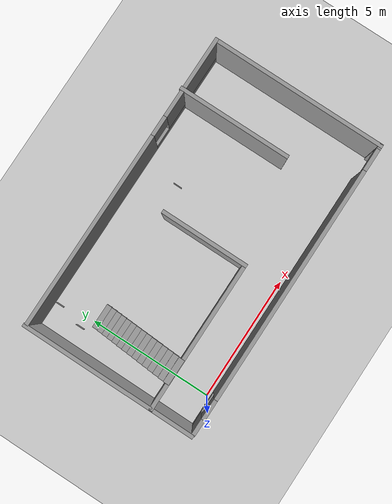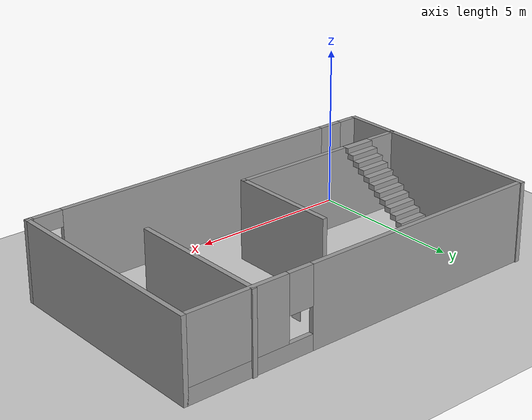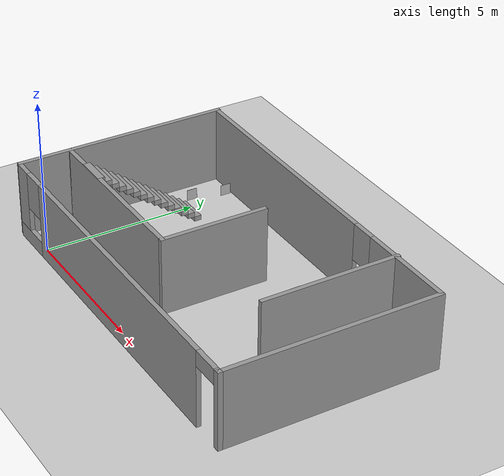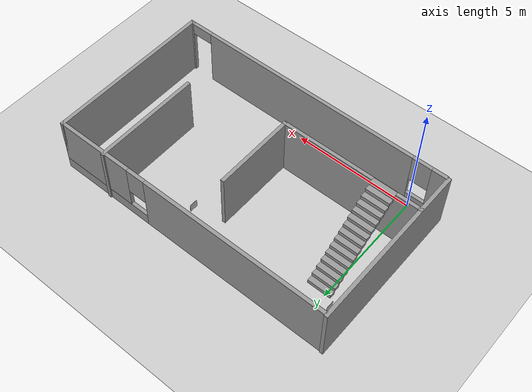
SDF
<sdf version="1.7">
 <world name="default">
  <light name="sun" type="directional">
   <pose>0 0 10 0 -0 0</pose>
   <diffuse>0.8 0.8 0.8 1</diffuse>
   <specular>0.2 0.2 0.2 1</specular>
   <attenuation>
    <range>1000</range>
    <constant>0.9</constant>
    <linear>0.01</linear>
    <quadratic>0.001</quadratic>
   </attenuation>
   <direction>-0.5 0.1 -0.9</direction>
   <spot><inner_angle>0</inner_angle><outer_angle>0</outer_angle><falloff>0</falloff></spot>
  </light>
  <model name="ground_plane">
   <static>1</static>
   <link name="link">
    <collision name="collision">
     <geometry><plane><normal>0 0 1</normal><size>100 100</size></plane></geometry>
     <surface><friction><ode><mu>100</mu><mu2>50</mu2></ode></friction></surface>
    </collision>
    <visual name="visual">
     <cast_shadows>0</cast_shadows>
     <geometry><plane><normal>0 0 1</normal><size>100 100</size></plane></geometry>
     <material>
      <script><uri>file://media/materials/scripts/gazebo.material</uri><name>Gazebo/Grey</name></script>
     </material>
    </visual>
   </link>
  </model>
  <gravity>0 0 -9.8</gravity>
  <magnetic_field>6e-06 2.3e-05 -4.2e-05</magnetic_field>
  <atmosphere type="adiabatic"/>
  <physics type="ode">
   <max_step_size>0.001</max_step_size>
   <real_time_factor>1</real_time_factor>
   <real_time_update_rate>1000</real_time_update_rate>
  </physics>
  <scene><ambient>0.4 0.4 0.4 1</ambient><background>0.7 0.7 0.7 1</background><shadows>1</shadows></scene>
  <audio><device>default</device></audio>
  <spherical_coordinates>
   <surface_model>EARTH_WGS84</surface_model>
   <latitude_deg>0</latitude_deg>
   <longitude_deg>0</longitude_deg>
   <elevation>0</elevation>
   <heading_deg>0</heading_deg>
  </spherical_coordinates>
  <model name="warehouse.world">
   <pose>4.76867 3.64281 0 0 -0 0</pose>
   <link name="Stairs_0">
    <visual name="Stairs_0_Visual_0">
     <pose>-4.47396 1.16918 0.083333 0 -0 0</pose>
     <geometry><box><size>1 0.233333 0.166667</size></box></geometry>
     <material>
      <script><uri>file://media/materials/scripts/gazebo.material</uri><name>Gazebo/Grey</name></script>
      <ambient>1 1 1 1</ambient>
     </material>
     <meta><layer>0</layer></meta>
    </visual>
    <collision name="Stairs_0_Collision_0">
     <geometry><box><size>1 0.233333 0.166667</size></box></geometry>
     <pose>-4.47396 1.16918 0.083333 0 -0 0</pose>
    </collision>
    <visual name="Stairs_0_Visual_1">
     <pose>-4.47396 0.935851 0.25 0 -0 0</pose>
     <geometry><box><size>1 0.233333 0.166667</size></box></geometry>
     <material>
      <script><uri>file://media/materials/scripts/gazebo.material</uri><name>Gazebo/Grey</name></script>
      <ambient>1 1 1 1</ambient>
     </material>
     <meta><layer>0</layer></meta>
    </visual>
    <collision name="Stairs_0_Collision_1">
     <geometry><box><size>1 0.233333 0.166667</size></box></geometry>
     <pose>-4.47396 0.935851 0.25 0 -0 0</pose>
    </collision>
    <visual name="Stairs_0_Visual_2">
     <pose>-4.47396 0.702518 0.416667 0 -0 0</pose>
     <geometry><box><size>1 0.233333 0.166667</size></box></geometry>
     <material>
      <script><uri>file://media/materials/scripts/gazebo.material</uri><name>Gazebo/Grey</name></script>
      <ambient>1 1 1 1</ambient>
     </material>
     <meta><layer>0</layer></meta>
    </visual>
    <collision name="Stairs_0_Collision_2">
     <geometry><box><size>1 0.233333 0.166667</size></box></geometry>
     <pose>-4.47396 0.702518 0.416667 0 -0 0</pose>
    </collision>
    <visual name="Stairs_0_Visual_3">
     <pose>-4.47396 0.469185 0.583333 0 -0 0</pose>
     <geometry><box><size>1 0.233333 0.166667</size></box></geometry>
     <material>
      <script><uri>file://media/materials/scripts/gazebo.material</uri><name>Gazebo/Grey</name></script>
      <ambient>1 1 1 1</ambient>
     </material>
     <meta><layer>0</layer></meta>
    </visual>
    <collision name="Stairs_0_Collision_3">
     <geometry><box><size>1 0.233333 0.166667</size></box></geometry>
     <pose>-4.47396 0.469185 0.583333 0 -0 0</pose>
    </collision>
    <visual name="Stairs_0_Visual_4">
     <pose>-4.47396 0.235851 0.75 0 -0 0</pose>
     <geometry><box><size>1 0.233333 0.166667</size></box></geometry>
     <material>
      <script><uri>file://media/materials/scripts/gazebo.material</uri><name>Gazebo/Grey</name></script>
      <ambient>1 1 1 1</ambient>
     </material>
     <meta><layer>0</layer></meta>
    </visual>
    <collision name="Stairs_0_Collision_4">
     <geometry><box><size>1 0.233333 0.166667</size></box></geometry>
     <pose>-4.47396 0.235851 0.75 0 -0 0</pose>
    </collision>
    <visual name="Stairs_0_Visual_5">
     <pose>-4.47396 0.002518 0.916667 0 -0 0</pose>
     <geometry><box><size>1 0.233333 0.166667</size></box></geometry>
     <material>
      <script><uri>file://media/materials/scripts/gazebo.material</uri><name>Gazebo/Grey</name></script>
      <ambient>1 1 1 1</ambient>
     </material>
     <meta><layer>0</layer></meta>
    </visual>
    <collision name="Stairs_0_Collision_5">
     <geometry><box><size>1 0.233333 0.166667</size></box></geometry>
     <pose>-4.47396 0.002518 0.916667 0 -0 0</pose>
    </collision>
    <visual name="Stairs_0_Visual_6">
     <pose>-4.47396 -0.230815 1.08333 0 -0 0</pose>
     <geometry><box><size>1 0.233333 0.166667</size></box></geometry>
     <material>
      <script><uri>file://media/materials/scripts/gazebo.material</uri><name>Gazebo/Grey</name></script>
      <ambient>1 1 1 1</ambient>
     </material>
     <meta><layer>0</layer></meta>
    </visual>
    <collision name="Stairs_0_Collision_6">
     <geometry><box><size>1 0.233333 0.166667</size></box></geometry>
     <pose>-4.47396 -0.230815 1.08333 0 -0 0</pose>
    </collision>
    <visual name="Stairs_0_Visual_7">
     <pose>-4.47396 -0.464149 1.25 0 -0 0</pose>
     <geometry><box><size>1 0.233333 0.166667</size></box></geometry>
     <material>
      <script><uri>file://media/materials/scripts/gazebo.material</uri><name>Gazebo/Grey</name></script>
      <ambient>1 1 1 1</ambient>
     </material>
     <meta><layer>0</layer></meta>
    </visual>
    <collision name="Stairs_0_Collision_7">
     <geometry><box><size>1 0.233333 0.166667</size></box></geometry>
     <pose>-4.47396 -0.464149 1.25 0 -0 0</pose>
    </collision>
    <visual name="Stairs_0_Visual_8">
     <pose>-4.47396 -0.697482 1.41667 0 -0 0</pose>
     <geometry><box><size>1 0.233333 0.166667</size></box></geometry>
     <material>
      <script><uri>file://media/materials/scripts/gazebo.material</uri><name>Gazebo/Grey</name></script>
      <ambient>1 1 1 1</ambient>
     </material>
     <meta><layer>0</layer></meta>
    </visual>
    <collision name="Stairs_0_Collision_8">
     <geometry><box><size>1 0.233333 0.166667</size></box></geometry>
     <pose>-4.47396 -0.697482 1.41667 0 -0 0</pose>
    </collision>
    <visual name="Stairs_0_Visual_9">
     <pose>-4.47396 -0.930815 1.58333 0 -0 0</pose>
     <geometry><box><size>1 0.233333 0.166667</size></box></geometry>
     <material>
      <script><uri>file://media/materials/scripts/gazebo.material</uri><name>Gazebo/Grey</name></script>
      <ambient>1 1 1 1</ambient>
     </material>
     <meta><layer>0</layer></meta>
    </visual>
    <collision name="Stairs_0_Collision_9">
     <geometry><box><size>1 0.233333 0.166667</size></box></geometry>
     <pose>-4.47396 -0.930815 1.58333 0 -0 0</pose>
    </collision>
    <visual name="Stairs_0_Visual_10">
     <pose>-4.47396 -1.16415 1.75 0 -0 0</pose>
     <geometry><box><size>1 0.233333 0.166667</size></box></geometry>
     <material>
      <script><uri>file://media/materials/scripts/gazebo.material</uri><name>Gazebo/Grey</name></script>
      <ambient>1 1 1 1</ambient>
     </material>
     <meta><layer>0</layer></meta>
    </visual>
    <collision name="Stairs_0_Collision_10">
     <geometry><box><size>1 0.233333 0.166667</size></box></geometry>
     <pose>-4.47396 -1.16415 1.75 0 -0 0</pose>
    </collision>
    <visual name="Stairs_0_Visual_11">
     <pose>-4.47396 -1.39748 1.91667 0 -0 0</pose>
     <geometry><box><size>1 0.233333 0.166667</size></box></geometry>
     <material>
      <script><uri>file://media/materials/scripts/gazebo.material</uri><name>Gazebo/Grey</name></script>
      <ambient>1 1 1 1</ambient>
     </material>
     <meta><layer>0</layer></meta>
    </visual>
    <collision name="Stairs_0_Collision_11">
     <geometry><box><size>1 0.233333 0.166667</size></box></geometry>
     <pose>-4.47396 -1.39748 1.91667 0 -0 0</pose>
    </collision>
    <visual name="Stairs_0_Visual_12">
     <pose>-4.47396 -1.63082 2.08333 0 -0 0</pose>
     <geometry><box><size>1 0.233333 0.166667</size></box></geometry>
     <material>
      <script><uri>file://media/materials/scripts/gazebo.material</uri><name>Gazebo/Grey</name></script>
      <ambient>1 1 1 1</ambient>
     </material>
     <meta><layer>0</layer></meta>
    </visual>
    <collision name="Stairs_0_Collision_12">
     <geometry><box><size>1 0.233333 0.166667</size></box></geometry>
     <pose>-4.47396 -1.63082 2.08333 0 -0 0</pose>
    </collision>
    <visual name="Stairs_0_Visual_13">
     <pose>-4.47396 -1.86415 2.25 0 -0 0</pose>
     <geometry><box><size>1 0.233333 0.166667</size></box></geometry>
     <material>
      <script><uri>file://media/materials/scripts/gazebo.material</uri><name>Gazebo/Grey</name></script>
      <ambient>1 1 1 1</ambient>
     </material>
     <meta><layer>0</layer></meta>
    </visual>
    <collision name="Stairs_0_Collision_13">
     <geometry><box><size>1 0.233333 0.166667</size></box></geometry>
     <pose>-4.47396 -1.86415 2.25 0 -0 0</pose>
    </collision>
    <visual name="Stairs_0_Visual_14">
     <pose>-4.47396 -2.09748 2.41667 0 -0 0</pose>
     <geometry><box><size>1 0.233333 0.166667</size></box></geometry>
     <material>
      <script><uri>file://media/materials/scripts/gazebo.material</uri><name>Gazebo/Grey</name></script>
      <ambient>1 1 1 1</ambient>
     </material>
     <meta><layer>0</layer></meta>
    </visual>
    <collision name="Stairs_0_Collision_14">
     <geometry><box><size>1 0.233333 0.166667</size></box></geometry>
     <pose>-4.47396 -2.09748 2.41667 0 -0 0</pose>
    </collision>
   </link>
   <link name="Wall_0">
    <pose>0.058361 3.0125 0 0 -0 0</pose>
    <visual name="Wall_0_Visual_0">
     <pose>-2.06547 0 1.25 0 -0 0</pose>
     <geometry><box><size>7.86906 0.15 2.5</size></box></geometry>
     <material>
      <script><uri>file://media/materials/scripts/gazebo.material</uri><name>Gazebo/Grey</name></script>
      <ambient>1 1 1 1</ambient>
     </material>
     <meta><layer>0</layer></meta>
    </visual>
    <collision name="Wall_0_Collision_0">
     <geometry><box><size>7.86906 0.15 2.5</size></box></geometry>
     <pose>-2.06547 0 1.25 0 -0 0</pose>
    </collision>
    <visual name="Wall_0_Visual_1">
     <pose>3.93453 0 0.25 0 -0 0</pose>
     <geometry><box><size>4.13094 0.15 0.5</size></box></geometry>
     <material>
      <script><uri>file://media/materials/scripts/gazebo.material</uri><name>Gazebo/Grey</name></script>
      <ambient>1 1 1 1</ambient>
     </material>
     <meta><layer>0</layer></meta>
    </visual>
    <collision name="Wall_0_Collision_1">
     <geometry><box><size>4.13094 0.15 0.5</size></box></geometry>
     <pose>3.93453 0 0.25 0 -0 0</pose>
    </collision>
    <visual name="Wall_0_Visual_2">
     <pose>4.33453 0 1.5 0 -0 0</pose>
     <geometry><box><size>3.33094 0.15 2</size></box></geometry>
     <material>
      <script><uri>file://media/materials/scripts/gazebo.material</uri><name>Gazebo/Grey</name></script>
      <ambient>1 1 1 1</ambient>
     </material>
     <meta><layer>0</layer></meta>
    </visual>
    <collision name="Wall_0_Collision_2">
     <geometry><box><size>3.33094 0.15 2</size></box></geometry>
     <pose>4.33453 0 1.5 0 -0 0</pose>
    </collision>
    <visual name="Wall_0_Visual_3">
     <pose>2.26905 0 1.9 0 -0 0</pose>
     <geometry><box><size>0.8 0.15 1.2</size></box></geometry>
     <material>
      <script><uri>file://media/materials/scripts/gazebo.material</uri><name>Gazebo/Grey</name></script>
      <ambient>1 1 1 1</ambient>
     </material>
     <meta><layer>0</layer></meta>
    </visual>
    <collision name="Wall_0_Collision_3">
     <geometry><box><size>0.8 0.15 1.2</size></box></geometry>
     <pose>2.26905 0 1.9 0 -0 0</pose>
    </collision>
   </link>
   <link name="Wall_1">
    <collision name="Wall_1_Collision">
     <geometry><box><size>7 0.15 2.5</size></box></geometry>
     <pose>0 0 1.25 0 -0 0</pose>
    </collision>
    <visual name="Wall_1_Visual">
     <pose>0 0 1.25 0 -0 0</pose>
     <geometry><box><size>7 0.15 2.5</size></box></geometry>
     <material>
      <script><uri>file://media/materials/scripts/gazebo.material</uri><name>Gazebo/Grey</name></script>
      <ambient>1 1 1 1</ambient>
     </material>
     <meta><layer>0</layer></meta>
    </visual>
    <pose>5.98336 -0.4125 0 0 -0 -1.5708</pose>
   </link>
   <link name="Wall_10">
    <collision name="Wall_10_Collision">
     <geometry><box><size>0.16 0.15 2.5</size></box></geometry>
     <pose>0 0 1.25 0 -0 0</pose>
    </collision>
    <visual name="Wall_10_Visual">
     <pose>0 0 1.25 0 -0 0</pose>
     <geometry><box><size>0.16 0.15 2.5</size></box></geometry>
     <material>
      <script><uri>file://media/materials/scripts/gazebo.material</uri><name>Gazebo/Grey</name></script>
      <ambient>1 1 1 1</ambient>
     </material>
     <meta><layer>0</layer></meta>
    </visual>
    <pose>-5.95233 -2.15442 0 0 -0 0</pose>
   </link>
   <link name="Wall_11">
    <collision name="Wall_11_Collision">
     <geometry><box><size>6 0.15 2.5</size></box></geometry>
     <pose>0 0 1.25 0 -0 0</pose>
    </collision>
    <visual name="Wall_11_Visual">
     <pose>0 0 1.25 0 -0 0</pose>
     <geometry><box><size>6 0.15 2.5</size></box></geometry>
     <material>
      <script><uri>file://media/materials/scripts/gazebo.material</uri><name>Gazebo/Grey</name></script>
      <ambient>1 1 1 1</ambient>
     </material>
     <meta><layer>0</layer></meta>
    </visual>
    <pose>-3.02233 -2.15442 0 0 -0 0</pose>
   </link>
   <link name="Wall_12">
    <collision name="Wall_12_Collision">
     <geometry><box><size>3.5 0.15 2.5</size></box></geometry>
     <pose>0 0 1.25 0 -0 0</pose>
    </collision>
    <visual name="Wall_12_Visual">
     <pose>0 0 1.25 0 -0 0</pose>
     <geometry><box><size>3.5 0.15 2.5</size></box></geometry>
     <material>
      <script><uri>file://media/materials/scripts/gazebo.material</uri><name>Gazebo/Grey</name></script>
      <ambient>1 1 1 1</ambient>
     </material>
     <meta><layer>0</layer></meta>
    </visual>
    <pose>-0.097328 -0.479422 0 0 -0 1.5708</pose>
   </link>
   <link name="Wall_3">
    <pose>0.058361 -3.8375 0 0 -0 3.14159</pose>
    <visual name="Wall_3_Visual_0">
     <pose>-5.89083 0 1.25 0 -0 0</pose>
     <geometry><box><size>0.218336 0.15 2.5</size></box></geometry>
     <material>
      <script><uri>file://media/materials/scripts/gazebo.material</uri><name>Gazebo/Grey</name></script>
      <ambient>1 1 1 1</ambient>
     </material>
     <meta><layer>0</layer></meta>
    </visual>
    <collision name="Wall_3_Collision_0">
     <geometry><box><size>0.218336 0.15 2.5</size></box></geometry>
     <pose>-5.89083 0 1.25 0 -0 0</pose>
    </collision>
    <visual name="Wall_3_Visual_1">
     <pose>-0.155913 0 1.25 0 -0 0</pose>
     <geometry><box><size>9.4515 0.15 2.5</size></box></geometry>
     <material>
      <script><uri>file://media/materials/scripts/gazebo.material</uri><name>Gazebo/Grey</name></script>
      <ambient>1 1 1 1</ambient>
     </material>
     <meta><layer>0</layer></meta>
    </visual>
    <collision name="Wall_3_Collision_1">
     <geometry><box><size>9.4515 0.15 2.5</size></box></geometry>
     <pose>-0.155913 0 1.25 0 -0 0</pose>
    </collision>
    <visual name="Wall_3_Visual_2">
     <pose>5.28492 0 0.25 0 -0 0</pose>
     <geometry><box><size>1.43016 0.15 0.5</size></box></geometry>
     <material>
      <script><uri>file://media/materials/scripts/gazebo.material</uri><name>Gazebo/Grey</name></script>
      <ambient>1 1 1 1</ambient>
     </material>
     <meta><layer>0</layer></meta>
    </visual>
    <collision name="Wall_3_Collision_2">
     <geometry><box><size>1.43016 0.15 0.5</size></box></geometry>
     <pose>5.28492 0 0.25 0 -0 0</pose>
    </collision>
    <visual name="Wall_3_Visual_3">
     <pose>5.68492 0 1.5 0 -0 0</pose>
     <geometry><box><size>0.630162 0.15 2</size></box></geometry>
     <material>
      <script><uri>file://media/materials/scripts/gazebo.material</uri><name>Gazebo/Grey</name></script>
      <ambient>1 1 1 1</ambient>
     </material>
     <meta><layer>0</layer></meta>
    </visual>
    <collision name="Wall_3_Collision_3">
     <geometry><box><size>0.630162 0.15 2</size></box></geometry>
     <pose>5.68492 0 1.5 0 -0 0</pose>
    </collision>
    <visual name="Wall_3_Visual_4">
     <pose>4.96984 0 1.9 0 -0 0</pose>
     <geometry><box><size>0.8 0.15 1.2</size></box></geometry>
     <material>
      <script><uri>file://media/materials/scripts/gazebo.material</uri><name>Gazebo/Grey</name></script>
      <ambient>1 1 1 1</ambient>
     </material>
     <meta><layer>0</layer></meta>
    </visual>
    <collision name="Wall_3_Collision_4">
     <geometry><box><size>0.8 0.15 1.2</size></box></geometry>
     <pose>4.96984 0 1.9 0 -0 0</pose>
    </collision>
    <visual name="Wall_3_Visual_5">
     <pose>-5.33166 0 2.25 0 -0 0</pose>
     <geometry><box><size>0.9 0.15 0.5</size></box></geometry>
     <material>
      <script><uri>file://media/materials/scripts/gazebo.material</uri><name>Gazebo/Grey</name></script>
      <ambient>1 1 1 1</ambient>
     </material>
     <meta><layer>0</layer></meta>
    </visual>
    <collision name="Wall_3_Collision_5">
     <geometry><box><size>0.9 0.15 0.5</size></box></geometry>
     <pose>-5.33166 0 2.25 0 -0 0</pose>
    </collision>
   </link>
   <link name="Wall_6">
    <collision name="Wall_6_Collision">
     <geometry><box><size>7 0.15 2.5</size></box></geometry>
     <pose>0 0 1.25 0 -0 0</pose>
    </collision>
    <visual name="Wall_6_Visual">
     <pose>0 0 1.25 0 -0 0</pose>
     <geometry><box><size>7 0.15 2.5</size></box></geometry>
     <material>
      <script><uri>file://media/materials/scripts/gazebo.material</uri><name>Gazebo/Grey</name></script>
      <ambient>1 1 1 1</ambient>
     </material>
     <meta><layer>0</layer></meta>
    </visual>
    <pose>-5.98336 -0.382647 0 0 -0 -1.5708</pose>
   </link>
   <link name="Wall_8">
    <collision name="Wall_8_Collision">
     <geometry><box><size>4.5 0.15 2.5</size></box></geometry>
     <pose>0 0 1.25 0 -0 0</pose>
    </collision>
    <visual name="Wall_8_Visual">
     <pose>0 0 1.25 0 -0 0</pose>
     <geometry><box><size>4.5 0.15 2.5</size></box></geometry>
     <material>
      <script><uri>file://media/materials/scripts/gazebo.material</uri><name>Gazebo/Grey</name></script>
      <ambient>1 1 1 1</ambient>
     </material>
     <meta><layer>0</layer></meta>
    </visual>
    <pose>3.87683 0.884968 0 0 -0 -1.5708</pose>
   </link>
   <static>1</static>
  </model>
  <include>
   <uri>model://apriltag_36h11_00000</uri>
   <name>waste_tag_0</name>
   <pose>-0.446897 5.29943 0.149021 0 -1.5708 0</pose>
  </include>
  <include>
   <uri>model://apriltag_36h11_00001</uri>
   <name>waste_tag_1</name>
   <pose>-0.172459 6.36765 0.149 0 -1.5708 0</pose>
  </include>
  <include>
   <uri>model://apriltag_36h11_00002</uri>
   <name>waste_tag_2</name>
   <pose>5.90944 5.17062 0.149 0 -1.5708 0</pose>
  </include>
 </world>
</sdf>

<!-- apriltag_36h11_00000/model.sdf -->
<sdf version='1.6'>
  <model name='apriltag_36h11_00000'>
    <link name='main'>
      <visual name='main_Visual'>
        <geometry>
          <box>
          <size>0.4 0.35 0.01</size>
          </box>
        </geometry>
        <material>
          <script>
            <uri>model://apriltag_36h11_00000/materials/scripts</uri>
            <uri>model://apriltag_36h11_00000/materials/textures</uri>
            <name>apriltag_36h11_00000</name>
          </script>
        </material>
      </visual>
      <collision name="collision">
        <geometry>
          <box><size>0.4 0.35 0.01</size></box>
        </geometry>
      </collision>
     </link>
    <static>1</static>
  </model>
</sdf>

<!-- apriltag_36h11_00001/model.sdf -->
<sdf version='1.6'>
  <model name='apriltag_36h11_00001'>
    <link name='main'>
      <visual name='main_Visual'>
        <geometry>
          <box>
          <size>0.4 0.35 0.01</size>
          </box>
        </geometry>
        <material>
          <script>
            <uri>model://apriltag_36h11_00001/materials/scripts</uri>
            <uri>model://apriltag_36h11_00001/materials/textures</uri>
            <name>apriltag_36h11_00001</name>
          </script>
        </material>
      </visual>
      <collision name="collision">
        <geometry>
          <box><size>0.4 0.35 0.01</size></box>
        </geometry>
      </collision>
     </link>
    <static>1</static>
  </model>
</sdf>

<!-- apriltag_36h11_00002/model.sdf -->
<sdf version='1.6'>
  <model name='apriltag_36h11_00002'>
    <link name='main'>
      <visual name='main_Visual'>
        <geometry>
          <box>
          <size>0.4 0.35 0.01</size>
          </box>
        </geometry>
        <material>
          <script>
            <uri>model://apriltag_36h11_00002/materials/scripts</uri>
            <uri>model://apriltag_36h11_00002/materials/textures</uri>
            <name>apriltag_36h11_00002</name>
          </script>
        </material>
      </visual>
      <collision name="collision">
        <geometry>
          <box><size>0.4 0.35 0.01</size></box>
        </geometry>
      </collision>
     </link>
    <static>1</static>
  </model>
</sdf>
